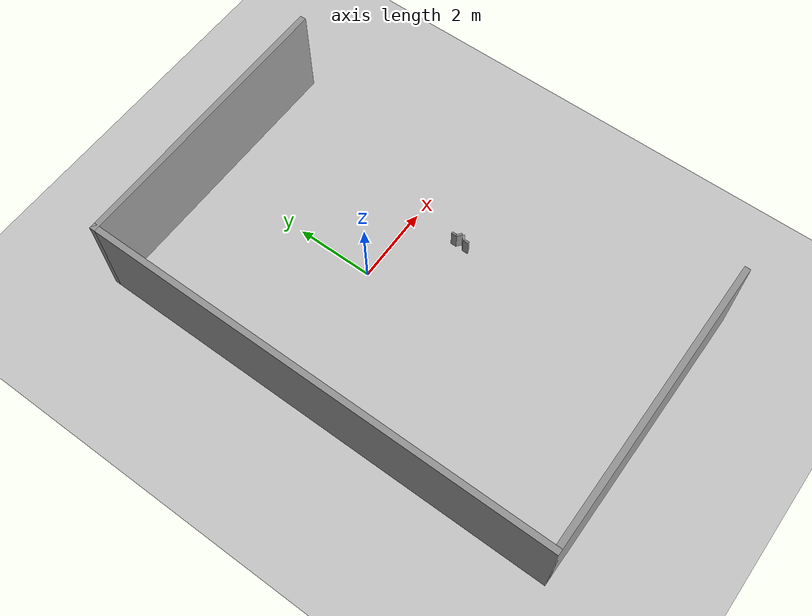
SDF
<sdf version="1.6">
 <world name="default">
  <light name="sun" type="directional">
   <pose>0 0 10 0 -0 0</pose>
   <diffuse>0.8 0.8 0.8 1</diffuse>
   <specular>0.2 0.2 0.2 1</specular>
   <attenuation>
    <range>1000</range>
    <constant>0.9</constant>
    <linear>0.01</linear>
    <quadratic>0.001</quadratic>
   </attenuation>
   <direction>-0.5 0.1 -0.9</direction>
  </light>
  <model name="ground_plane">
   <static>1</static>
   <link name="link">
    <collision name="collision">
     <geometry><plane><normal>0 0 1</normal><size>100 100</size></plane></geometry>
     <surface><friction><ode><mu>100</mu><mu2>50</mu2></ode></friction></surface>
    </collision>
    <visual name="visual">
     <cast_shadows>0</cast_shadows>
     <geometry><plane><normal>0 0 1</normal><size>100 100</size></plane></geometry>
     <material>
      <script><uri>file://media/materials/scripts/gazebo.material</uri><name>Gazebo/Grey</name></script>
     </material>
    </visual>
   </link>
  </model>
  <gravity>0 0 -9.8</gravity>
  <magnetic_field>6e-06 2.3e-05 -4.2e-05</magnetic_field>
  <atmosphere type="adiabatic"/>
  <physics name="default_physics" default="0" type="ode">
   <max_step_size>0.001</max_step_size>
   <real_time_factor>1</real_time_factor>
   <real_time_update_rate>1000</real_time_update_rate>
  </physics>
  <scene><ambient>0.4 0.4 0.4 1</ambient><background>0.7 0.7 0.7 1</background><shadows>1</shadows></scene>
  <audio><device>default</device></audio>
  <spherical_coordinates>
   <surface_model>EARTH_WGS84</surface_model>
   <latitude_deg>0</latitude_deg>
   <longitude_deg>0</longitude_deg>
   <elevation>0</elevation>
   <heading_deg>0</heading_deg>
  </spherical_coordinates>
  <model name="dock15">
   <link name="link_1">
    <inertial>
     <mass>1</mass>
     <inertia>
      <ixx>0.166667</ixx>
      <ixy>0</ixy>
      <ixz>0</ixz>
      <iyy>0.166667</iyy>
      <iyz>0</iyz>
      <izz>0.166667</izz>
     </inertia>
    </inertial>
    <pose>0.014328 -0.052229 6e-06 0 -0 0</pose>
    <visual name="visual">
     <pose>0 0 0 0 0 -0.9</pose>
     <geometry><box><size>0.05 0.15 0.5</size></box></geometry>
     <material>
      <lighting>1</lighting>
      <script><uri>file://media/materials/scripts/gazebo.material</uri><name>Gazebo/Grey</name></script>
      <shader type="pixel"><normal_map>__default__</normal_map></shader>
      <ambient>0.3 0.3 0.3 1</ambient>
      <diffuse>0.7 0.7 0.7 1</diffuse>
      <specular>0.01 0.01 0.01 1</specular>
      <emissive>0 0 0 1</emissive>
     </material>
    </visual>
    <collision name="collision">
     <pose>0 0 0 0 0 -0.9</pose>
     <geometry><box><size>0.05 0.15 0.5</size></box></geometry>
     <surface>
      <friction>
       <ode><mu>1</mu><mu2>1</mu2><fdir1>0 0 0</fdir1><slip1>0</slip1><slip2>0</slip2></ode>
       <torsional>
        <coefficient>1</coefficient>
        <patch_radius>0</patch_radius>
        <surface_radius>0</surface_radius>
        <use_patch_radius>1</use_patch_radius>
        <ode><slip>0</slip></ode>
       </torsional>
      </friction>
      <bounce><restitution_coefficient>0</restitution_coefficient><threshold>1e+06</threshold></bounce>
      <contact>
       <collide_without_contact>0</collide_without_contact>
       <collide_without_contact_bitmask>1</collide_without_contact_bitmask>
       <collide_bitmask>1</collide_bitmask>
       <ode>
        <soft_cfm>0</soft_cfm>
        <soft_erp>0.2</soft_erp>
        <kp>1e+13</kp>
        <kd>1</kd>
        <max_vel>0.01</max_vel>
        <min_depth>0</min_depth>
       </ode>
       <bullet>
        <split_impulse>1</split_impulse>
        <split_impulse_penetration_threshold>-0.01</split_impulse_penetration_threshold>
        <soft_cfm>0</soft_cfm>
        <soft_erp>0.2</soft_erp>
        <kp>1e+13</kp>
        <kd>1</kd>
       </bullet>
      </contact>
     </surface>
    </collision>
   </link>
   <link name="link_2">
    <inertial>
     <mass>1</mass>
     <inertia>
      <ixx>0.166667</ixx>
      <ixy>0</ixy>
      <ixz>0</ixz>
      <iyy>0.166667</iyy>
      <iyz>0</iyz>
      <izz>0.166667</izz>
     </inertia>
    </inertial>
    <pose>0.01467 0.078828 0.000101 0 -0 0</pose>
    <visual name="visual">
     <pose>0 0 0 0 -0 0.9</pose>
     <geometry><box><size>0.05 0.15 0.5</size></box></geometry>
     <material>
      <lighting>1</lighting>
      <script><uri>file://media/materials/scripts/gazebo.material</uri><name>Gazebo/Grey</name></script>
      <shader type="pixel"><normal_map>__default__</normal_map></shader>
      <ambient>0.3 0.3 0.3 1</ambient>
      <diffuse>0.7 0.7 0.7 1</diffuse>
      <specular>0.01 0.01 0.01 1</specular>
      <emissive>0 0 0 1</emissive>
     </material>
    </visual>
    <collision name="collision">
     <pose>0 0 0 0 -0 0.9</pose>
     <geometry><box><size>0.05 0.15 0.5</size></box></geometry>
     <surface>
      <friction>
       <ode><mu>1</mu><mu2>1</mu2><fdir1>0 0 0</fdir1><slip1>0</slip1><slip2>0</slip2></ode>
       <torsional>
        <coefficient>1</coefficient>
        <patch_radius>0</patch_radius>
        <surface_radius>0</surface_radius>
        <use_patch_radius>1</use_patch_radius>
        <ode><slip>0</slip></ode>
       </torsional>
      </friction>
      <bounce><restitution_coefficient>0</restitution_coefficient><threshold>1e+06</threshold></bounce>
      <contact>
       <collide_without_contact>0</collide_without_contact>
       <collide_without_contact_bitmask>1</collide_without_contact_bitmask>
       <collide_bitmask>1</collide_bitmask>
       <ode>
        <soft_cfm>0</soft_cfm>
        <soft_erp>0.2</soft_erp>
        <kp>1e+13</kp>
        <kd>1</kd>
        <max_vel>0.01</max_vel>
        <min_depth>0</min_depth>
       </ode>
       <bullet>
        <split_impulse>1</split_impulse>
        <split_impulse_penetration_threshold>-0.01</split_impulse_penetration_threshold>
        <soft_cfm>0</soft_cfm>
        <soft_erp>0.2</soft_erp>
        <kp>1e+13</kp>
        <kd>1</kd>
       </bullet>
      </contact>
     </surface>
    </collision>
   </link>
   <link name="link_3">
    <inertial>
     <mass>1</mass>
     <inertia>
      <ixx>0.166667</ixx>
      <ixy>0</ixy>
      <ixz>0</ixz>
      <iyy>0.166667</iyy>
      <iyz>0</iyz>
      <izz>0.166667</izz>
     </inertia>
    </inertial>
    <pose>-0.036041 -0.155445 3e-06 0 -0 0</pose>
    <visual name="visual">
     <geometry><box><size>0.05 0.15 0.5</size></box></geometry>
     <material>
      <lighting>1</lighting>
      <script><uri>file://media/materials/scripts/gazebo.material</uri><name>Gazebo/Grey</name></script>
      <shader type="pixel"><normal_map>__default__</normal_map></shader>
      <ambient>0.3 0.3 0.3 1</ambient>
      <diffuse>0.7 0.7 0.7 1</diffuse>
      <specular>0.01 0.01 0.01 1</specular>
      <emissive>0 0 0 1</emissive>
     </material>
    </visual>
    <collision name="collision">
     <geometry><box><size>0.05 0.15 0.5</size></box></geometry>
     <surface>
      <friction>
       <ode><mu>1</mu><mu2>1</mu2><fdir1>0 0 0</fdir1><slip1>0</slip1><slip2>0</slip2></ode>
       <torsional>
        <coefficient>1</coefficient>
        <patch_radius>0</patch_radius>
        <surface_radius>0</surface_radius>
        <use_patch_radius>1</use_patch_radius>
        <ode><slip>0</slip></ode>
       </torsional>
      </friction>
      <bounce><restitution_coefficient>0</restitution_coefficient><threshold>1e+06</threshold></bounce>
      <contact>
       <collide_without_contact>0</collide_without_contact>
       <collide_without_contact_bitmask>1</collide_without_contact_bitmask>
       <collide_bitmask>1</collide_bitmask>
       <ode>
        <soft_cfm>0</soft_cfm>
        <soft_erp>0.2</soft_erp>
        <kp>1e+13</kp>
        <kd>1</kd>
        <max_vel>0.01</max_vel>
        <min_depth>0</min_depth>
       </ode>
       <bullet>
        <split_impulse>1</split_impulse>
        <split_impulse_penetration_threshold>-0.01</split_impulse_penetration_threshold>
        <soft_cfm>0</soft_cfm>
        <soft_erp>0.2</soft_erp>
        <kp>1e+13</kp>
        <kd>1</kd>
       </bullet>
      </contact>
     </surface>
    </collision>
   </link>
   <link name="link_3_clone">
    <inertial>
     <mass>1</mass>
     <inertia>
      <ixx>0.166667</ixx>
      <ixy>0</ixy>
      <ixz>0</ixz>
      <iyy>0.166667</iyy>
      <iyz>0</iyz>
      <izz>0.166667</izz>
     </inertia>
    </inertial>
    <pose>-0.034531 0.179165 -0.000858 0 -0 0</pose>
    <visual name="visual">
     <geometry><box><size>0.05 0.15 0.5</size></box></geometry>
     <material>
      <lighting>1</lighting>
      <script><uri>file://media/materials/scripts/gazebo.material</uri><name>Gazebo/Grey</name></script>
      <shader type="pixel"><normal_map>__default__</normal_map></shader>
      <ambient>0.3 0.3 0.3 1</ambient>
      <diffuse>0.7 0.7 0.7 1</diffuse>
      <specular>0.01 0.01 0.01 1</specular>
      <emissive>0 0 0 1</emissive>
     </material>
    </visual>
    <collision name="collision">
     <geometry><box><size>0.05 0.15 0.5</size></box></geometry>
     <surface>
      <friction>
       <ode><mu>1</mu><mu2>1</mu2><fdir1>0 0 0</fdir1><slip1>0</slip1><slip2>0</slip2></ode>
       <torsional>
        <coefficient>1</coefficient>
        <patch_radius>0</patch_radius>
        <surface_radius>0</surface_radius>
        <use_patch_radius>1</use_patch_radius>
        <ode><slip>0</slip></ode>
       </torsional>
      </friction>
      <bounce><restitution_coefficient>0</restitution_coefficient><threshold>1e+06</threshold></bounce>
      <contact>
       <collide_without_contact>0</collide_without_contact>
       <collide_without_contact_bitmask>1</collide_without_contact_bitmask>
       <collide_bitmask>1</collide_bitmask>
       <ode>
        <soft_cfm>0</soft_cfm>
        <soft_erp>0.2</soft_erp>
        <kp>1e+13</kp>
        <kd>1</kd>
        <max_vel>0.01</max_vel>
        <min_depth>0</min_depth>
       </ode>
       <bullet>
        <split_impulse>1</split_impulse>
        <split_impulse_penetration_threshold>-0.01</split_impulse_penetration_threshold>
        <soft_cfm>0</soft_cfm>
        <soft_erp>0.2</soft_erp>
        <kp>1e+13</kp>
        <kd>1</kd>
       </bullet>
      </contact>
     </surface>
    </collision>
   </link>
   <model name="wall1">
    <pose>-1.89804 -0.075673 0 0 -0 0</pose>
    <link name="Wall_31">
     <collision name="Wall_31_Collision">
      <geometry><box><size>7.25 0.15 2.5</size></box></geometry>
      <pose>0 0 1.25 0 -0 0</pose>
     </collision>
     <visual name="Wall_31_Visual">
      <pose>0 0 1.25 0 -0 0</pose>
      <geometry><box><size>7.25 0.15 2.5</size></box></geometry>
      <material>
       <script><uri>file://media/materials/scripts/gazebo.material</uri><name>Gazebo/Grey</name></script>
       <ambient>1 1 1 1</ambient>
      </material>
      <meta><layer>0</layer></meta>
     </visual>
     <pose>-0.125 5.925 0 0 -0 3.14159</pose>
    </link>
    <link name="Wall_32">
     <collision name="Wall_32_Collision">
      <geometry><box><size>12 0.15 2.5</size></box></geometry>
      <pose>0 0 1.25 0 -0 0</pose>
     </collision>
     <visual name="Wall_32_Visual">
      <pose>0 0 1.25 0 -0 0</pose>
      <geometry><box><size>12 0.15 2.5</size></box></geometry>
      <material>
       <script><uri>file://media/materials/scripts/gazebo.material</uri><name>Gazebo/Grey</name></script>
       <ambient>1 1 1 1</ambient>
      </material>
      <meta><layer>0</layer></meta>
     </visual>
     <pose>-3.675 0 0 0 -0 -1.5708</pose>
    </link>
    <link name="Wall_33">
     <collision name="Wall_33_Collision">
      <geometry><box><size>7.5 0.15 2.5</size></box></geometry>
      <pose>0 0 1.25 0 -0 0</pose>
     </collision>
     <visual name="Wall_33_Visual">
      <pose>0 0 1.25 0 -0 0</pose>
      <geometry><box><size>7.5 0.15 2.5</size></box></geometry>
      <material>
       <script><uri>file://media/materials/scripts/gazebo.material</uri><name>Gazebo/Grey</name></script>
       <ambient>1 1 1 1</ambient>
      </material>
      <meta><layer>0</layer></meta>
     </visual>
     <pose>0 -5.925 0 0 -0 0</pose>
    </link>
    <static>1</static>
   </model>
   <static>0</static>
   <pose>1.91696 -1.36374 0.250104 0.001253 0.000994 -8.5e-05</pose>
  </model>
 </world>
</sdf>
